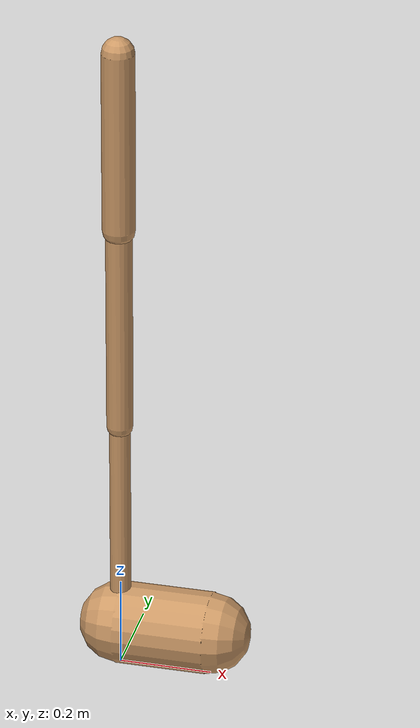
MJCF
<mujoco model="walker2d">
  <compiler angle="degree" coordinate="global" inertiafromgeom="true" />
  <default>
    <joint armature="0.01" damping=".1" limited="true" />
    <geom conaffinity="0" condim="3" contype="1" density="1000" friction="0.8 .1 .1" rgba="0.8 0.6 .4 1" />
  </default>
  <option integrator="RK4" timestep="0.002" />
  <worldbody>

    <body name="torso" pos="0 0 0.027835108524375048">
      <joint armature="0" axis="1 0 0" damping="0" limited="false" name="ignorex" pos="0 0 0" stiffness="0" type="slide" />
      <joint armature="0" axis="0 0 1" damping="0" limited="false" name="ignorez" pos="0 0 0" ref="1.25" stiffness="0" type="slide" />
      <joint armature="0" axis="0 1 0" damping="0" limited="false" name="ignorey" pos="0 0 0" stiffness="0" type="hinge" />
      <geom fromto="0 0 1.45 0 0 1.05" name="torso_geom" size="0.035290227415743745" type="capsule" />
      <body name="thigh">
        <joint axis="0 -1 0" name="thigh_joint" pos="0 0 1.05" range="-150 0" type="hinge" />
        <geom fromto="0.0 0.0 1.05 0.0 0.0 0.5868149485937171" name="thigh_geom" size="0.028458171100528173" type="capsule" />
        <body name="leg" pos="0.0 0.0 -0.0131850514062829">
          <joint axis="0 -1 0" name="leg_joint" pos="0 0 0.6" range="-150 0" type="hinge" />
          <geom fromto="0.0 0.0 0.6 0.0 0.0 0.08534994288190788" name="leg_geom" size="0.02276653688042254" type="capsule" />
          <body name="foot" pos="0.0 0.0 -0.014650057118092127">
            <joint axis="0 -1 0" name="foot_joint" pos="0 0 0.1" range="-45 45" type="hinge" />
            <geom fromto="0.0 0.0 0.1 0.19823024582227236 0.0 0.1" name="foot_geom" size="0.08958709692242396" type="capsule" />
          </body>
        </body>
      </body>

      <body name="thigh_left">
        <joint axis="0 -1 0" name="thigh_left_joint" pos="0 0 1.05" range="-150 0" type="hinge" />
        <geom fromto="0.0 0.0 1.05 0.0 0.0 0.5868149485937171" name="thigh_left_geom" rgba=".7 .3 .6 1" size="0.028458171100528173" type="capsule" />
        <body name="leg_left" pos="0.0 0.0 -0.0131850514062829">
          <joint axis="0 -1 0" name="leg_left_joint" pos="0 0 0.6" range="-150 0" type="hinge" />
          <geom fromto="0.0 0.0 0.6 0.0 0.0 0.08534994288190788" name="leg_left_geom" rgba=".7 .3 .6 1" size="0.02276653688042254" type="capsule" />
          <body name="foot_left" pos="0.0 0.0 -0.014650057118092127">
            <joint axis="0 -1 0" name="foot_left_joint" pos="0 0 0.1" range="-45 45" type="hinge" />
            <geom fromto="0.0 0.0 0.1 0.19823024582227236 0.0 0.1" name="foot_left_geom" rgba=".7 .3 .6 1" size="0.08958709692242396" type="capsule" />
          </body>
        </body>
      </body>
    </body>
  </worldbody>
  <actuator>

    <motor ctrllimited="true" ctrlrange="-1.0 1.0" gear="100" joint="thigh_joint" />
    <motor ctrllimited="true" ctrlrange="-1.0 1.0" gear="100" joint="leg_joint" />
    <motor ctrllimited="true" ctrlrange="-1.0 1.0" gear="100" joint="foot_joint" />
    <motor ctrllimited="true" ctrlrange="-1.0 1.0" gear="100" joint="thigh_left_joint" />
    <motor ctrllimited="true" ctrlrange="-1.0 1.0" gear="100" joint="leg_left_joint" />
    <motor ctrllimited="true" ctrlrange="-1.0 1.0" gear="100" joint="foot_left_joint" />

  </actuator>
</mujoco>
